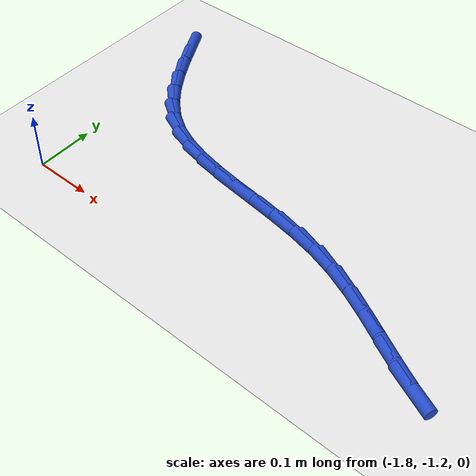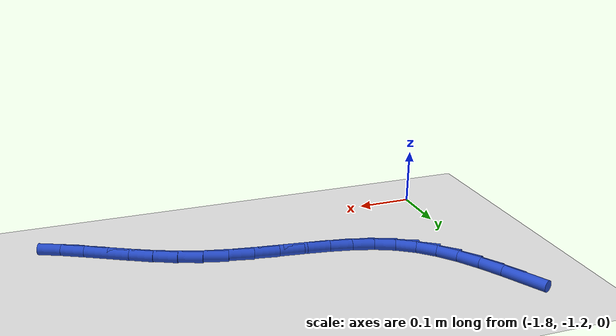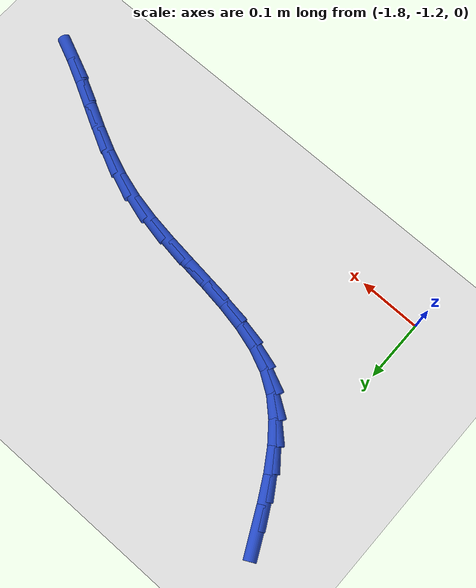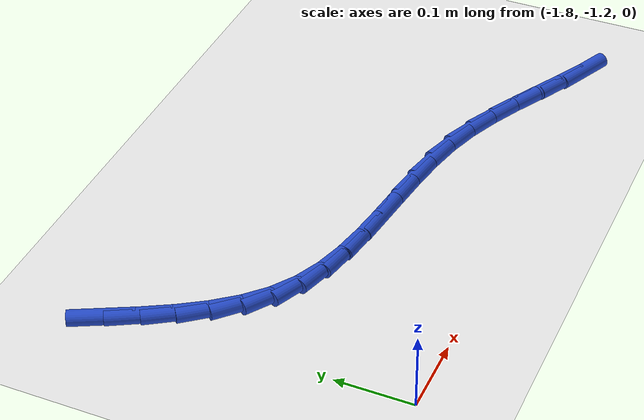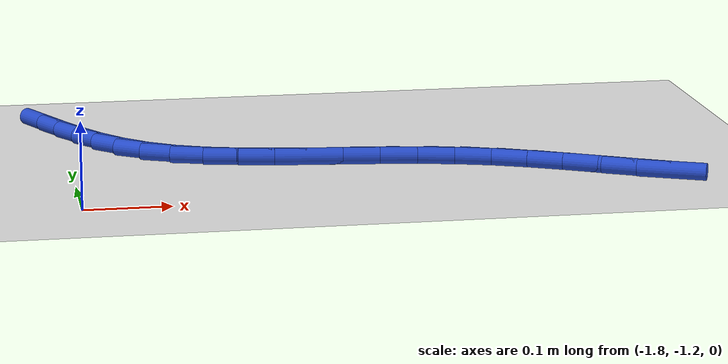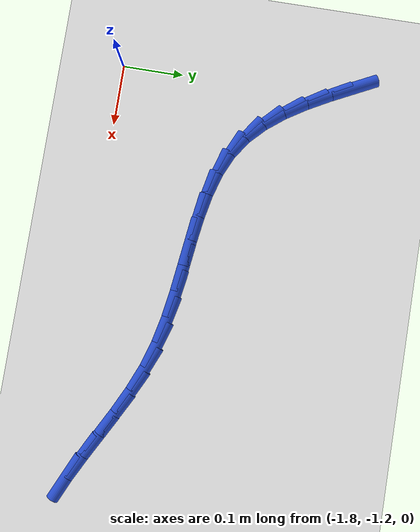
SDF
<sdf version="1.6">
 <world name="default">
  <model name="ground_plane">
   <static>1</static>
   <link name="link">
    <collision name="collision">
     <geometry><plane><normal>0 0 1</normal><size>100 100</size></plane></geometry>
     <surface><friction><ode><mu>100</mu><mu2>50</mu2></ode></friction></surface>
    </collision>
    <visual name="visual">
     <cast_shadows>0</cast_shadows>
     <geometry><plane><normal>0 0 1</normal><size>100 100</size></plane></geometry>
     <material>
      <script><uri>file://media/materials/scripts/gazebo.material</uri><name>Gazebo/WhiteGlow</name></script>
     </material>
    </visual>
   </link>
  </model>
  <model name="line">
   <link name="link_106">
    <pose>-1.8196023038384774 -0.8165247011158525 0.01 0 1.57 -1.1064820756469336</pose>
    <collision name="collision">
     <geometry><cylinder><radius>0.01</radius><length>0.08</length></cylinder></geometry>
    </collision>
    <visual name="visual">
     <material>
      <script><name>Gazebo/Blue</name><uri>file://media/materials/scripts/gazebo.material</uri></script>
     </material>
     <geometry><cylinder><radius>0.01</radius><length>0.08</length></cylinder></geometry>
    </visual>
   </link>
   <link name="link_107">
    <pose>-1.8003627385143135 -0.8549397876180569 0.01 0 1.57 -1.0681237001927837</pose>
    <collision name="collision">
     <geometry><cylinder><radius>0.01</radius><length>0.08</length></cylinder></geometry>
    </collision>
    <visual name="visual">
     <material>
      <script><name>Gazebo/Blue</name><uri>file://media/materials/scripts/gazebo.material</uri></script>
     </material>
     <geometry><cylinder><radius>0.01</radius><length>0.08</length></cylinder></geometry>
    </visual>
   </link>
   <link name="link_108">
    <pose>-1.7803223979191678 -0.8913914947044086 0.01 0 1.57 -1.0015842424180272</pose>
    <collision name="collision">
     <geometry><cylinder><radius>0.01</radius><length>0.08</length></cylinder></geometry>
    </collision>
    <visual name="visual">
     <material>
      <script><name>Gazebo/Blue</name><uri>file://media/materials/scripts/gazebo.material</uri></script>
     </material>
     <geometry><cylinder><radius>0.01</radius><length>0.08</length></cylinder></geometry>
    </visual>
   </link>
   <link name="link_109">
    <pose>-1.7587669977194655 -0.9250793088881817 0.01 0 1.57 -0.9024433833802249</pose>
    <collision name="collision">
     <geometry><cylinder><radius>0.01</radius><length>0.08</length></cylinder></geometry>
    </collision>
    <visual name="visual">
     <material>
      <script><name>Gazebo/Blue</name><uri>file://media/materials/scripts/gazebo.material</uri></script>
     </material>
     <geometry><cylinder><radius>0.01</radius><length>0.08</length></cylinder></geometry>
    </visual>
   </link>
   <link name="link_110">
    <pose>-1.73498225358163 -0.9552027166826507 0.01 0 1.57 -0.7669216510731338</pose>
    <collision name="collision">
     <geometry><cylinder><radius>0.01</radius><length>0.08</length></cylinder></geometry>
    </collision>
    <visual name="visual">
     <material>
      <script><name>Gazebo/Blue</name><uri>file://media/materials/scripts/gazebo.material</uri></script>
     </material>
     <geometry><cylinder><radius>0.01</radius><length>0.08</length></cylinder></geometry>
    </visual>
   </link>
   <link name="link_111">
    <pose>-1.708253881172088 -0.9809612046010896 0.01 0 1.57 -0.5959869700203495</pose>
    <collision name="collision">
     <geometry><cylinder><radius>0.01</radius><length>0.08</length></cylinder></geometry>
    </collision>
    <visual name="visual">
     <material>
      <script><name>Gazebo/Blue</name><uri>file://media/materials/scripts/gazebo.material</uri></script>
     </material>
     <geometry><cylinder><radius>0.01</radius><length>0.08</length></cylinder></geometry>
    </visual>
   </link>
   <link name="link_112">
    <pose>-1.6778757994632363 -1.0015654910784995 0.01 0 1.57 -0.4219977143533221</pose>
    <collision name="collision">
     <geometry><cylinder><radius>0.01</radius><length>0.08</length></cylinder></geometry>
    </collision>
    <visual name="visual">
     <material>
      <script><name>Gazebo/Blue</name><uri>file://media/materials/scripts/gazebo.material</uri></script>
     </material>
     <geometry><cylinder><radius>0.01</radius><length>0.08</length></cylinder></geometry>
    </visual>
   </link>
   <link name="link_113">
    <pose>-1.6436554620770392 -1.0169294233867885 0.01 0 1.57 -0.28926067316763837</pose>
    <collision name="collision">
     <geometry><cylinder><radius>0.01</radius><length>0.08</length></cylinder></geometry>
    </collision>
    <visual name="visual">
     <material>
      <script><name>Gazebo/Blue</name><uri>file://media/materials/scripts/gazebo.material</uri></script>
     </material>
     <geometry><cylinder><radius>0.01</radius><length>0.08</length></cylinder></geometry>
    </visual>
   </link>
   <link name="link_114">
    <pose>-1.6062088183079508 -1.0280738366560829 0.01 0 1.57 -0.19849647072317508</pose>
    <collision name="collision">
     <geometry><cylinder><radius>0.01</radius><length>0.08</length></cylinder></geometry>
    </collision>
    <visual name="visual">
     <material>
      <script><name>Gazebo/Blue</name><uri>file://media/materials/scripts/gazebo.material</uri></script>
     </material>
     <geometry><cylinder><radius>0.01</radius><length>0.08</length></cylinder></geometry>
    </visual>
   </link>
   <link name="link_115">
    <pose>-1.566222849267777 -1.0361168223928034 0.01 0 1.57 -0.14383475985599653</pose>
    <collision name="collision">
     <geometry><cylinder><radius>0.01</radius><length>0.08</length></cylinder></geometry>
    </collision>
    <visual name="visual">
     <material>
      <script><name>Gazebo/Blue</name><uri>file://media/materials/scripts/gazebo.material</uri></script>
     </material>
     <geometry><cylinder><radius>0.01</radius><length>0.08</length></cylinder></geometry>
    </visual>
   </link>
   <link name="link_116">
    <pose>-1.5243845360683275 -1.0421764721033706 0.01 0 1.57 -0.12020743544024666</pose>
    <collision name="collision">
     <geometry><cylinder><radius>0.01</radius><length>0.08</length></cylinder></geometry>
    </collision>
    <visual name="visual">
     <material>
      <script><name>Gazebo/Blue</name><uri>file://media/materials/scripts/gazebo.material</uri></script>
     </material>
     <geometry><cylinder><radius>0.01</radius><length>0.08</length></cylinder></geometry>
    </visual>
   </link>
   <link name="link_117">
    <pose>-1.4813808598214055 -1.0473708772942036 0.01 0 1.57 -0.1246266000533722</pose>
    <collision name="collision">
     <geometry><cylinder><radius>0.01</radius><length>0.08</length></cylinder></geometry>
    </collision>
    <visual name="visual">
     <material>
      <script><name>Gazebo/Blue</name><uri>file://media/materials/scripts/gazebo.material</uri></script>
     </material>
     <geometry><cylinder><radius>0.01</radius><length>0.08</length></cylinder></geometry>
    </visual>
   </link>
   <link name="link_118">
    <pose>-1.4378988016388203 -1.0528181294717238 0.01 0 1.57 -0.15627581732248796</pose>
    <collision name="collision">
     <geometry><cylinder><radius>0.01</radius><length>0.08</length></cylinder></geometry>
    </collision>
    <visual name="visual">
     <material>
      <script><name>Gazebo/Blue</name><uri>file://media/materials/scripts/gazebo.material</uri></script>
     </material>
     <geometry><cylinder><radius>0.01</radius><length>0.08</length></cylinder></geometry>
    </visual>
   </link>
   <link name="link_119">
    <pose>-1.3946253426323767 -1.0596363201423509 0.01 0 1.57 -0.21619211747209477</pose>
    <collision name="collision">
     <geometry><cylinder><radius>0.01</radius><length>0.08</length></cylinder></geometry>
    </collision>
    <visual name="visual">
     <material>
      <script><name>Gazebo/Blue</name><uri>file://media/materials/scripts/gazebo.material</uri></script>
     </material>
     <geometry><cylinder><radius>0.01</radius><length>0.08</length></cylinder></geometry>
    </visual>
   </link>
   <link name="link_120">
    <pose>-1.352247463913882 -1.0689435408125054 0.01 0 1.57 -0.30510112267400197</pose>
    <collision name="collision">
     <geometry><cylinder><radius>0.01</radius><length>0.08</length></cylinder></geometry>
    </collision>
    <visual name="visual">
     <material>
      <script><name>Gazebo/Blue</name><uri>file://media/materials/scripts/gazebo.material</uri></script>
     </material>
     <geometry><cylinder><radius>0.01</radius><length>0.08</length></cylinder></geometry>
    </visual>
   </link>
   <link name="link_121">
    <pose>-1.3114239226747617 -1.0818002772729178 0.01 0 1.57 -0.3951936516849707</pose>
    <collision name="collision">
     <geometry><cylinder><radius>0.01</radius><length>0.08</length></cylinder></geometry>
    </collision>
    <visual name="visual">
     <material>
      <script><name>Gazebo/Blue</name><uri>file://media/materials/scripts/gazebo.material</uri></script>
     </material>
     <geometry><cylinder><radius>0.01</radius><length>0.08</length></cylinder></geometry>
    </visual>
   </link>
   <link name="link_122">
    <pose>-1.2722598886112948 -1.0981371296207454 0.01 0 1.57 -0.4586583772639894</pose>
    <collision name="collision">
     <geometry><cylinder><radius>0.01</radius><length>0.08</length></cylinder></geometry>
    </collision>
    <visual name="visual">
     <material>
      <script><name>Gazebo/Blue</name><uri>file://media/materials/scripts/gazebo.material</uri></script>
     </material>
     <geometry><cylinder><radius>0.01</radius><length>0.08</length></cylinder></geometry>
    </visual>
   </link>
   <link name="link_123">
    <pose>-1.2343553428233296 -1.1168535956022692 0.01 0 1.57 -0.4939509841059638</pose>
    <collision name="collision">
     <geometry><cylinder><radius>0.01</radius><length>0.08</length></cylinder></geometry>
    </collision>
    <visual name="visual">
     <material>
      <script><name>Gazebo/Blue</name><uri>file://media/materials/scripts/gazebo.material</uri></script>
     </material>
     <geometry><cylinder><radius>0.01</radius><length>0.08</length></cylinder></geometry>
    </visual>
   </link>
   <link name="link_124">
    <pose>-1.197291747675391 -1.1368113757694909 0.01 0 1.57 -0.5009165010443102</pose>
    <collision name="collision">
     <geometry><cylinder><radius>0.01</radius><length>0.08</length></cylinder></geometry>
    </collision>
    <visual name="visual">
     <material>
      <script><name>Gazebo/Blue</name><uri>file://media/materials/scripts/gazebo.material</uri></script>
     </material>
     <geometry><cylinder><radius>0.01</radius><length>0.08</length></cylinder></geometry>
    </visual>
   </link>
   <link name="link_125">
    <pose>-1.1606505655320043 -1.1568721706744125 0.01 0 1.57 -0.47896289811667786</pose>
    <collision name="collision">
     <geometry><cylinder><radius>0.01</radius><length>0.08</length></cylinder></geometry>
    </collision>
    <visual name="visual">
     <material>
      <script><name>Gazebo/Blue</name><uri>file://media/materials/scripts/gazebo.material</uri></script>
     </material>
     <geometry><cylinder><radius>0.01</radius><length>0.08</length></cylinder></geometry>
    </visual>
   </link>
   <link name="link_126">
    <pose>-1.1240132587576945 -1.1758976808690362 0.01 0 1.57 -0.42685387399469343</pose>
    <collision name="collision">
     <geometry><cylinder><radius>0.01</radius><length>0.08</length></cylinder></geometry>
    </collision>
    <visual name="visual">
     <material>
      <script><name>Gazebo/Blue</name><uri>file://media/materials/scripts/gazebo.material</uri></script>
     </material>
     <geometry><cylinder><radius>0.01</radius><length>0.08</length></cylinder></geometry>
    </visual>
   </link>
  </model>
 </world>
</sdf>
